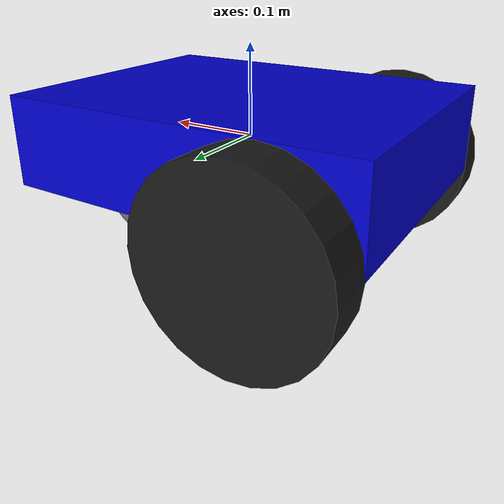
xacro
<?xml version="1.0"?>
<robot name="my_stereo_robot" xmlns:xacro="http://ros.org/wiki/xacro">

  <!-- ================= 1. 核心底盘 ================= -->
  <link name="base_link">
    <visual>
      <geometry><box size="0.4 0.3 0.1"/></geometry>
      <material name="blue"><color rgba="0 0 0.8 1"/></material>
    </visual>
    <collision>
      <geometry><box size="0.4 0.3 0.1"/></geometry>
    </collision>
    <inertial>
      <mass value="5.0"/>
      <inertia ixx="0.04" ixy="0" ixz="0" iyy="0.07" iyz="0" izz="0.1"/>
    </inertial>
  </link>

  <!-- ================= 2. 左轮 ================= -->
  <link name="left_wheel">
    <visual>
      <geometry><cylinder radius="0.1" length="0.05"/></geometry>
      <material name="black"><color rgba="0.1 0.1 0.1 1"/></material>
    </visual>
    <collision>
      <geometry><cylinder radius="0.1" length="0.05"/></geometry>
    </collision>
    <inertial>
      <mass value="1.0"/>
      <inertia ixx="0.00271" ixy="0" ixz="0" iyy="0.00271" iyz="0" izz="0.005"/>
    </inertial>
  </link>
  <joint name="left_wheel_joint" type="continuous">
    <parent link="base_link"/>
    <child link="left_wheel"/>
    <origin xyz="-0.1 0.175 -0.05" rpy="-1.5708 0 0"/>
    <axis xyz="0 0 1"/>
  </joint>

  <!-- ================= 3. 右轮 ================= -->
  <link name="right_wheel">
    <visual>
      <geometry><cylinder radius="0.1" length="0.05"/></geometry>
      <material name="black"><color rgba="0.1 0.1 0.1 1"/></material>
    </visual>
    <collision>
      <geometry><cylinder radius="0.1" length="0.05"/></geometry>
    </collision>
    <inertial>
      <mass value="1.0"/>
      <inertia ixx="0.00271" ixy="0" ixz="0" iyy="0.00271" iyz="0" izz="0.005"/>
    </inertial>
  </link>
  <joint name="right_wheel_joint" type="continuous">
    <parent link="base_link"/>
    <child link="right_wheel"/>
    <origin xyz="-0.1 -0.175 -0.05" rpy="-1.5708 0 0"/>
    <axis xyz="0 0 1"/>
  </joint>

  <!-- ================= 4. 前置万向轮 (支撑防刮地) ================= -->
  <link name="caster">
    <visual>
      <geometry><sphere radius="0.05"/></geometry>
      <material name="grey"><color rgba="0.6 0.6 0.6 1"/></material>
    </visual>
    <collision>
      <geometry><sphere radius="0.05"/></geometry>
    </collision>
    <inertial>
      <mass value="0.5"/>
      <inertia ixx="0.001" ixy="0" ixz="0" iyy="0.001" iyz="0" izz="0.001"/>
    </inertial>
  </link>
  <joint name="caster_joint" type="fixed">
    <parent link="base_link"/>
    <child link="caster"/>
    <origin xyz="0.15 0 -0.1" rpy="0 0 0"/>
  </joint>
  <!-- 取消万向轮的摩擦力，让它丝滑滑动 -->
  <gazebo reference="caster">
    <mu1>0.0</mu1>
    <mu2>0.0</mu2>
  </gazebo>

  <!-- ================= 5. 双目相机 ================= -->
  <link name="camera_left_link" />
  <joint name="camera_left_joint" type="fixed">
    <parent link="base_link"/>
    <child link="camera_left_link"/>
    <origin xyz="0.2 0.05 0.1" rpy="0 0 0"/>
  </joint>

  <link name="camera_right_link" />
  <joint name="camera_right_joint" type="fixed">
    <parent link="base_link"/>
    <child link="camera_right_link"/>
    <origin xyz="0.2 -0.05 0.1" rpy="0 0 0"/>
  </joint>

  <gazebo reference="camera_left_link">
    <sensor name="left_camera" type="camera">
      <camera>
        <horizontal_fov>1.57</horizontal_fov>
        <image><width>640</width><height>480</height></image>
        <clip><near>0.1</near><far>100</far></clip>
      </camera>
      <always_on>1</always_on><update_rate>30</update_rate><visualize>true</visualize>
      <topic>camera/left/image_raw</topic>
    </sensor>
  </gazebo>

  <gazebo reference="camera_right_link">
    <sensor name="right_camera" type="camera">
      <camera>
        <horizontal_fov>1.57</horizontal_fov>
        <image><width>640</width><height>480</height></image>
        <clip><near>0.1</near><far>100</far></clip>
      </camera>
      <always_on>1</always_on><update_rate>30</update_rate><visualize>true</visualize>
      <topic>camera/right/image_raw</topic>
    </sensor>
  </gazebo>

  <!-- ================= 6. 物理驱动插件 ================= -->
  <gazebo reference="base_link">
    <plugin filename="ignition-gazebo-diff-drive-system" name="ignition::gazebo::systems::DiffDrive">
      <!-- 这里绑定到了真实的关节上 -->
      <left_joint>left_wheel_joint</left_joint>
      <right_joint>right_wheel_joint</right_joint>
      <wheel_separation>0.35</wheel_separation>
      <wheel_radius>0.1</wheel_radius>
      <odom_publish_frequency>30</odom_publish_frequency>
      <topic>/cmd_vel</topic>
      <odom_topic>odom</odom_topic>
      <frame_id>odom</frame_id>
      <child_frame_id>base_link</child_frame_id>
    </plugin>
  </gazebo>
</robot>
